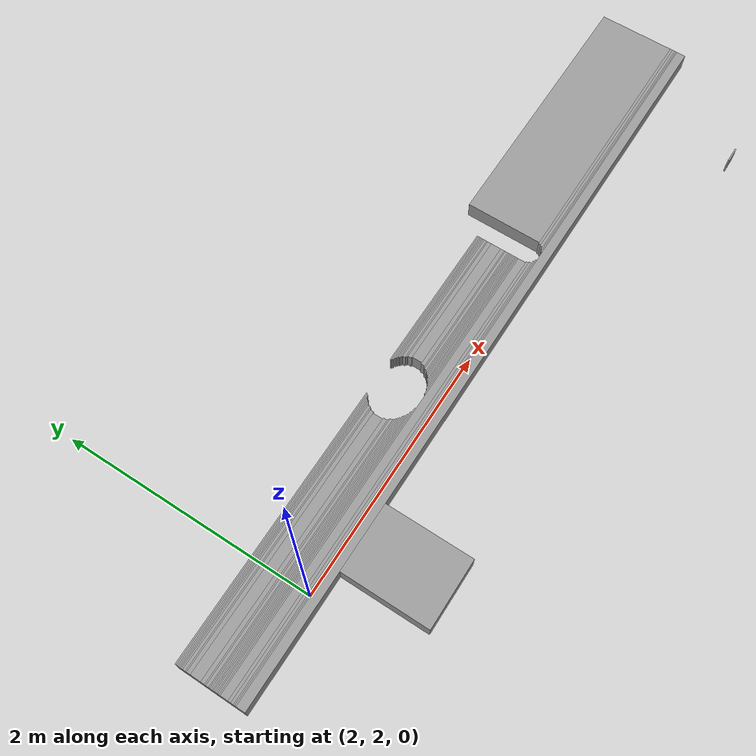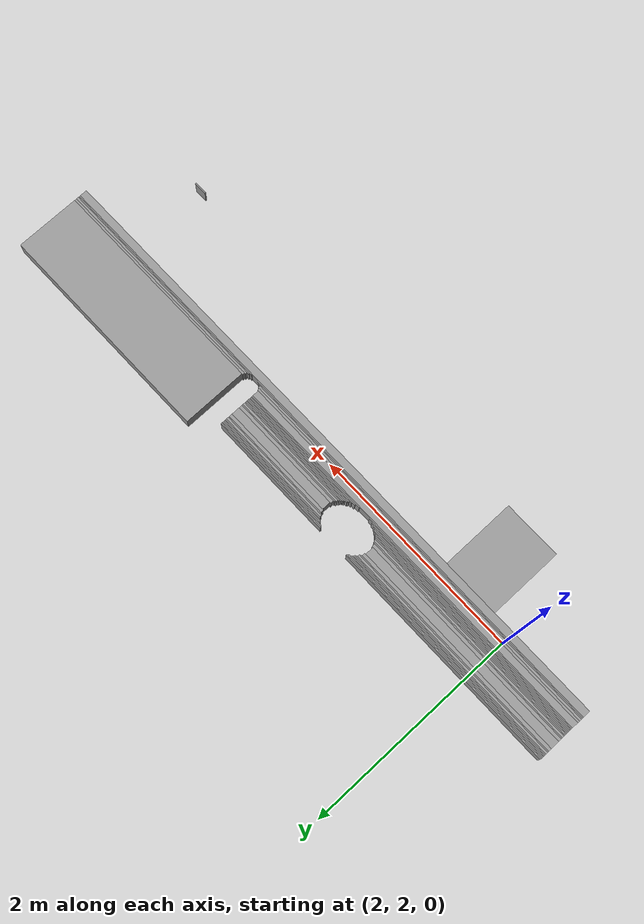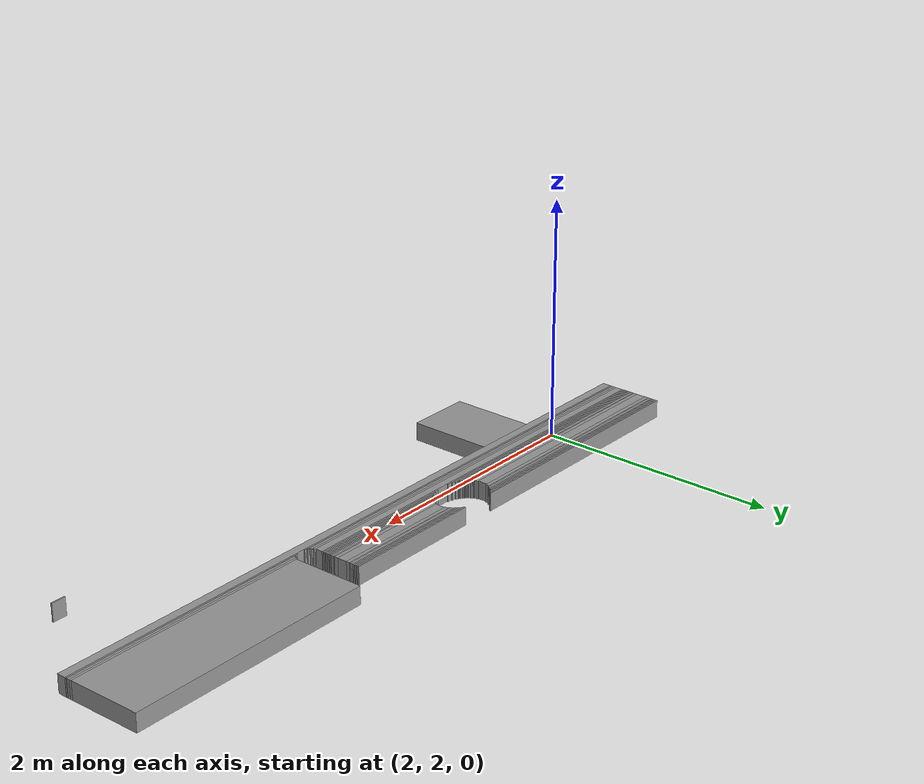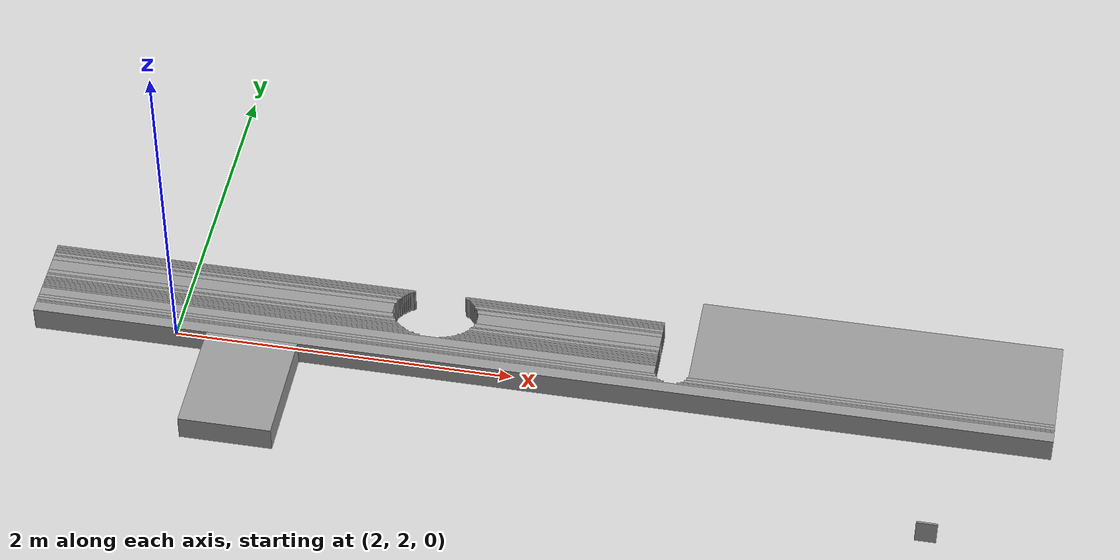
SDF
<sdf version="1.6">
 <model name="new_model">
  <static>1</static>
  <static>1</static>
  <static>1</static>
  <static>1</static>
  <static>1</static>
  <static>1</static>
  <static>1</static>
  <static>1</static>
  <static>1</static>
  <static>1</static>
  <static>1</static>
  <static>1</static>
  <static>1</static>
  <static>1</static>
  <static>1</static>
  <static>1</static>
  <static>1</static>
  <static>1</static>
  <static>1</static>
  <static>1</static>
  <static>1</static>
  <static>1</static>
  <static>1</static>
  <static>1</static>
  <static>1</static>
  <static>1</static>
  <static>1</static>
  <static>1</static>
  <static>1</static>
  <static>1</static>
  <static>1</static>
  <static>1</static>
  <static>1</static>
  <static>1</static>
  <static>1</static>
  <static>1</static>
  <static>1</static>
  <static>1</static>
  <static>1</static>
  <static>1</static>
  <static>1</static>
  <static>1</static>
  <static>1</static>
  <static>1</static>
  <static>1</static>
  <static>1</static>
  <static>1</static>
  <static>1</static>
  <static>1</static>
  <static>1</static>
  <static>1</static>
  <static>1</static>
  <static>1</static>
  <static>1</static>
  <static>1</static>
  <static>1</static>
  <static>1</static>
  <link name="wall58">
   <collision name="wall58_collision">
    <geometry><box><size>0.121250 0.011250 0.150000</size></box></geometry>
    <pose>6.485000 1.180000 0.075000 0 0 0</pose>
   </collision>
   <visual name="Wall_58_Visual">
    <pose>6.485000 1.180000 0.075000 0 0 0</pose>
    <geometry><box><size>0.121250 0.011250 0.150000</size></box></geometry>
    <material>
     <script><uri>file://media/materials/scripts/gazebo.material</uri><name>Gazebo/Grey</name></script>
     <ambient>1 1 1 1</ambient>
    </material>
    <meta><layer>0</layer></meta>
   </visual>
  </link>
  <static>1</static>
  <link name="wall59">
   <collision name="wall59_collision">
    <geometry><box><size>0.541250 0.691250 0.150000</size></box></geometry>
    <pose>2.485000 1.560000 0.075000 0 0 0</pose>
   </collision>
   <visual name="Wall_59_Visual">
    <pose>2.485000 1.560000 0.075000 0 0 0</pose>
    <geometry><box><size>0.541250 0.691250 0.150000</size></box></geometry>
    <material>
     <script><uri>file://media/materials/scripts/gazebo.material</uri><name>Gazebo/Grey</name></script>
     <ambient>1 1 1 1</ambient>
    </material>
    <meta><layer>0</layer></meta>
   </visual>
  </link>
  <static>1</static>
  <link name="wall60">
   <collision name="wall60_collision">
    <geometry><box><size>5.951250 0.071250 0.150000</size></box></geometry>
    <pose>4.150000 1.940000 0.075000 0 0 0</pose>
   </collision>
   <visual name="Wall_60_Visual">
    <pose>4.150000 1.940000 0.075000 0 0 0</pose>
    <geometry><box><size>5.951250 0.071250 0.150000</size></box></geometry>
    <material>
     <script><uri>file://media/materials/scripts/gazebo.material</uri><name>Gazebo/Grey</name></script>
     <ambient>1 1 1 1</ambient>
    </material>
    <meta><layer>0</layer></meta>
   </visual>
  </link>
  <static>1</static>
  <link name="wall61">
   <collision name="wall61_collision">
    <geometry><box><size>3.711250 0.011250 0.150000</size></box></geometry>
    <pose>3.030000 1.980000 0.075000 0 0 0</pose>
   </collision>
   <visual name="Wall_61_Visual">
    <pose>3.030000 1.980000 0.075000 0 0 0</pose>
    <geometry><box><size>3.711250 0.011250 0.150000</size></box></geometry>
    <material>
     <script><uri>file://media/materials/scripts/gazebo.material</uri><name>Gazebo/Grey</name></script>
     <ambient>1 1 1 1</ambient>
    </material>
    <meta><layer>0</layer></meta>
   </visual>
  </link>
  <static>1</static>
  <link name="wall62">
   <collision name="wall62_collision">
    <geometry><box><size>2.161250 0.011250 0.150000</size></box></geometry>
    <pose>6.045000 1.980000 0.075000 0 0 0</pose>
   </collision>
   <visual name="Wall_62_Visual">
    <pose>6.045000 1.980000 0.075000 0 0 0</pose>
    <geometry><box><size>2.161250 0.011250 0.150000</size></box></geometry>
    <material>
     <script><uri>file://media/materials/scripts/gazebo.material</uri><name>Gazebo/Grey</name></script>
     <ambient>1 1 1 1</ambient>
    </material>
    <meta><layer>0</layer></meta>
   </visual>
  </link>
  <static>1</static>
  <link name="wall63">
   <collision name="wall63_collision">
    <geometry><box><size>3.691250 0.011250 0.150000</size></box></geometry>
    <pose>3.020000 1.990000 0.075000 0 0 0</pose>
   </collision>
   <visual name="Wall_63_Visual">
    <pose>3.020000 1.990000 0.075000 0 0 0</pose>
    <geometry><box><size>3.691250 0.011250 0.150000</size></box></geometry>
    <material>
     <script><uri>file://media/materials/scripts/gazebo.material</uri><name>Gazebo/Grey</name></script>
     <ambient>1 1 1 1</ambient>
    </material>
    <meta><layer>0</layer></meta>
   </visual>
  </link>
  <static>1</static>
  <link name="wall64">
   <collision name="wall64_collision">
    <geometry><box><size>2.141250 0.011250 0.150000</size></box></geometry>
    <pose>6.055000 1.990000 0.075000 0 0 0</pose>
   </collision>
   <visual name="Wall_64_Visual">
    <pose>6.055000 1.990000 0.075000 0 0 0</pose>
    <geometry><box><size>2.141250 0.011250 0.150000</size></box></geometry>
    <material>
     <script><uri>file://media/materials/scripts/gazebo.material</uri><name>Gazebo/Grey</name></script>
     <ambient>1 1 1 1</ambient>
    </material>
    <meta><layer>0</layer></meta>
   </visual>
  </link>
  <static>1</static>
  <link name="wall65">
   <collision name="wall65_collision">
    <geometry><box><size>3.671250 0.021250 0.150000</size></box></geometry>
    <pose>3.010000 2.005000 0.075000 0 0 0</pose>
   </collision>
   <visual name="Wall_65_Visual">
    <pose>3.010000 2.005000 0.075000 0 0 0</pose>
    <geometry><box><size>3.671250 0.021250 0.150000</size></box></geometry>
    <material>
     <script><uri>file://media/materials/scripts/gazebo.material</uri><name>Gazebo/Grey</name></script>
     <ambient>1 1 1 1</ambient>
    </material>
    <meta><layer>0</layer></meta>
   </visual>
  </link>
  <static>1</static>
  <link name="wall66">
   <collision name="wall66_collision">
    <geometry><box><size>2.121250 0.021250 0.150000</size></box></geometry>
    <pose>6.065000 2.005000 0.075000 0 0 0</pose>
   </collision>
   <visual name="Wall_66_Visual">
    <pose>6.065000 2.005000 0.075000 0 0 0</pose>
    <geometry><box><size>2.121250 0.021250 0.150000</size></box></geometry>
    <material>
     <script><uri>file://media/materials/scripts/gazebo.material</uri><name>Gazebo/Grey</name></script>
     <ambient>1 1 1 1</ambient>
    </material>
    <meta><layer>0</layer></meta>
   </visual>
  </link>
  <static>1</static>
  <link name="wall67">
   <collision name="wall67_collision">
    <geometry><box><size>3.661250 0.021250 0.150000</size></box></geometry>
    <pose>3.005000 2.025000 0.075000 0 0 0</pose>
   </collision>
   <visual name="Wall_67_Visual">
    <pose>3.005000 2.025000 0.075000 0 0 0</pose>
    <geometry><box><size>3.661250 0.021250 0.150000</size></box></geometry>
    <material>
     <script><uri>file://media/materials/scripts/gazebo.material</uri><name>Gazebo/Grey</name></script>
     <ambient>1 1 1 1</ambient>
    </material>
    <meta><layer>0</layer></meta>
   </visual>
  </link>
  <static>1</static>
  <link name="wall68">
   <collision name="wall68_collision">
    <geometry><box><size>2.111250 0.021250 0.150000</size></box></geometry>
    <pose>6.070000 2.025000 0.075000 0 0 0</pose>
   </collision>
   <visual name="Wall_68_Visual">
    <pose>6.070000 2.025000 0.075000 0 0 0</pose>
    <geometry><box><size>2.111250 0.021250 0.150000</size></box></geometry>
    <material>
     <script><uri>file://media/materials/scripts/gazebo.material</uri><name>Gazebo/Grey</name></script>
     <ambient>1 1 1 1</ambient>
    </material>
    <meta><layer>0</layer></meta>
   </visual>
  </link>
  <static>1</static>
  <link name="wall69">
   <collision name="wall69_collision">
    <geometry><box><size>3.651250 0.061250 0.150000</size></box></geometry>
    <pose>3.000000 2.065000 0.075000 0 0 0</pose>
   </collision>
   <visual name="Wall_69_Visual">
    <pose>3.000000 2.065000 0.075000 0 0 0</pose>
    <geometry><box><size>3.651250 0.061250 0.150000</size></box></geometry>
    <material>
     <script><uri>file://media/materials/scripts/gazebo.material</uri><name>Gazebo/Grey</name></script>
     <ambient>1 1 1 1</ambient>
    </material>
    <meta><layer>0</layer></meta>
   </visual>
  </link>
  <static>1</static>
  <link name="wall70">
   <collision name="wall70_collision">
    <geometry><box><size>2.101250 0.601250 0.150000</size></box></geometry>
    <pose>6.075000 2.335000 0.075000 0 0 0</pose>
   </collision>
   <visual name="Wall_70_Visual">
    <pose>6.075000 2.335000 0.075000 0 0 0</pose>
    <geometry><box><size>2.101250 0.601250 0.150000</size></box></geometry>
    <material>
     <script><uri>file://media/materials/scripts/gazebo.material</uri><name>Gazebo/Grey</name></script>
     <ambient>1 1 1 1</ambient>
    </material>
    <meta><layer>0</layer></meta>
   </visual>
  </link>
  <static>1</static>
  <link name="wall71">
   <collision name="wall71_collision">
    <geometry><box><size>2.261250 0.011250 0.150000</size></box></geometry>
    <pose>2.305000 2.100000 0.075000 0 0 0</pose>
   </collision>
   <visual name="Wall_71_Visual">
    <pose>2.305000 2.100000 0.075000 0 0 0</pose>
    <geometry><box><size>2.261250 0.011250 0.150000</size></box></geometry>
    <material>
     <script><uri>file://media/materials/scripts/gazebo.material</uri><name>Gazebo/Grey</name></script>
     <ambient>1 1 1 1</ambient>
    </material>
    <meta><layer>0</layer></meta>
   </visual>
  </link>
  <static>1</static>
  <link name="wall72">
   <collision name="wall72_collision">
    <geometry><box><size>1.271250 0.011250 0.150000</size></box></geometry>
    <pose>4.190000 2.100000 0.075000 0 0 0</pose>
   </collision>
   <visual name="Wall_72_Visual">
    <pose>4.190000 2.100000 0.075000 0 0 0</pose>
    <geometry><box><size>1.271250 0.011250 0.150000</size></box></geometry>
    <material>
     <script><uri>file://media/materials/scripts/gazebo.material</uri><name>Gazebo/Grey</name></script>
     <ambient>1 1 1 1</ambient>
    </material>
    <meta><layer>0</layer></meta>
   </visual>
  </link>
  <static>1</static>
  <link name="wall73">
   <collision name="wall73_collision">
    <geometry><box><size>2.221250 0.011250 0.150000</size></box></geometry>
    <pose>2.285000 2.110000 0.075000 0 0 0</pose>
   </collision>
   <visual name="Wall_73_Visual">
    <pose>2.285000 2.110000 0.075000 0 0 0</pose>
    <geometry><box><size>2.221250 0.011250 0.150000</size></box></geometry>
    <material>
     <script><uri>file://media/materials/scripts/gazebo.material</uri><name>Gazebo/Grey</name></script>
     <ambient>1 1 1 1</ambient>
    </material>
    <meta><layer>0</layer></meta>
   </visual>
  </link>
  <static>1</static>
  <link name="wall74">
   <collision name="wall74_collision">
    <geometry><box><size>1.231250 0.011250 0.150000</size></box></geometry>
    <pose>4.210000 2.110000 0.075000 0 0 0</pose>
   </collision>
   <visual name="Wall_74_Visual">
    <pose>4.210000 2.110000 0.075000 0 0 0</pose>
    <geometry><box><size>1.231250 0.011250 0.150000</size></box></geometry>
    <material>
     <script><uri>file://media/materials/scripts/gazebo.material</uri><name>Gazebo/Grey</name></script>
     <ambient>1 1 1 1</ambient>
    </material>
    <meta><layer>0</layer></meta>
   </visual>
  </link>
  <static>1</static>
  <link name="wall75">
   <collision name="wall75_collision">
    <geometry><box><size>2.191250 0.011250 0.150000</size></box></geometry>
    <pose>2.270000 2.120000 0.075000 0 0 0</pose>
   </collision>
   <visual name="Wall_75_Visual">
    <pose>2.270000 2.120000 0.075000 0 0 0</pose>
    <geometry><box><size>2.191250 0.011250 0.150000</size></box></geometry>
    <material>
     <script><uri>file://media/materials/scripts/gazebo.material</uri><name>Gazebo/Grey</name></script>
     <ambient>1 1 1 1</ambient>
    </material>
    <meta><layer>0</layer></meta>
   </visual>
  </link>
  <static>1</static>
  <link name="wall76">
   <collision name="wall76_collision">
    <geometry><box><size>1.201250 0.011250 0.150000</size></box></geometry>
    <pose>4.225000 2.120000 0.075000 0 0 0</pose>
   </collision>
   <visual name="Wall_76_Visual">
    <pose>4.225000 2.120000 0.075000 0 0 0</pose>
    <geometry><box><size>1.201250 0.011250 0.150000</size></box></geometry>
    <material>
     <script><uri>file://media/materials/scripts/gazebo.material</uri><name>Gazebo/Grey</name></script>
     <ambient>1 1 1 1</ambient>
    </material>
    <meta><layer>0</layer></meta>
   </visual>
  </link>
  <static>1</static>
  <link name="wall77">
   <collision name="wall77_collision">
    <geometry><box><size>2.171250 0.011250 0.150000</size></box></geometry>
    <pose>2.260000 2.130000 0.075000 0 0 0</pose>
   </collision>
   <visual name="Wall_77_Visual">
    <pose>2.260000 2.130000 0.075000 0 0 0</pose>
    <geometry><box><size>2.171250 0.011250 0.150000</size></box></geometry>
    <material>
     <script><uri>file://media/materials/scripts/gazebo.material</uri><name>Gazebo/Grey</name></script>
     <ambient>1 1 1 1</ambient>
    </material>
    <meta><layer>0</layer></meta>
   </visual>
  </link>
  <static>1</static>
  <link name="wall78">
   <collision name="wall78_collision">
    <geometry><box><size>1.181250 0.011250 0.150000</size></box></geometry>
    <pose>4.235000 2.130000 0.075000 0 0 0</pose>
   </collision>
   <visual name="Wall_78_Visual">
    <pose>4.235000 2.130000 0.075000 0 0 0</pose>
    <geometry><box><size>1.181250 0.011250 0.150000</size></box></geometry>
    <material>
     <script><uri>file://media/materials/scripts/gazebo.material</uri><name>Gazebo/Grey</name></script>
     <ambient>1 1 1 1</ambient>
    </material>
    <meta><layer>0</layer></meta>
   </visual>
  </link>
  <static>1</static>
  <link name="wall79">
   <collision name="wall79_collision">
    <geometry><box><size>2.161250 0.011250 0.150000</size></box></geometry>
    <pose>2.255000 2.140000 0.075000 0 0 0</pose>
   </collision>
   <visual name="Wall_79_Visual">
    <pose>2.255000 2.140000 0.075000 0 0 0</pose>
    <geometry><box><size>2.161250 0.011250 0.150000</size></box></geometry>
    <material>
     <script><uri>file://media/materials/scripts/gazebo.material</uri><name>Gazebo/Grey</name></script>
     <ambient>1 1 1 1</ambient>
    </material>
    <meta><layer>0</layer></meta>
   </visual>
  </link>
  <static>1</static>
  <link name="wall80">
   <collision name="wall80_collision">
    <geometry><box><size>1.171250 0.011250 0.150000</size></box></geometry>
    <pose>4.240000 2.140000 0.075000 0 0 0</pose>
   </collision>
   <visual name="Wall_80_Visual">
    <pose>4.240000 2.140000 0.075000 0 0 0</pose>
    <geometry><box><size>1.171250 0.011250 0.150000</size></box></geometry>
    <material>
     <script><uri>file://media/materials/scripts/gazebo.material</uri><name>Gazebo/Grey</name></script>
     <ambient>1 1 1 1</ambient>
    </material>
    <meta><layer>0</layer></meta>
   </visual>
  </link>
  <static>1</static>
  <link name="wall81">
   <collision name="wall81_collision">
    <geometry><box><size>2.141250 0.011250 0.150000</size></box></geometry>
    <pose>2.245000 2.150000 0.075000 0 0 0</pose>
   </collision>
   <visual name="Wall_81_Visual">
    <pose>2.245000 2.150000 0.075000 0 0 0</pose>
    <geometry><box><size>2.141250 0.011250 0.150000</size></box></geometry>
    <material>
     <script><uri>file://media/materials/scripts/gazebo.material</uri><name>Gazebo/Grey</name></script>
     <ambient>1 1 1 1</ambient>
    </material>
    <meta><layer>0</layer></meta>
   </visual>
  </link>
  <static>1</static>
  <link name="wall82">
   <collision name="wall82_collision">
    <geometry><box><size>1.151250 0.011250 0.150000</size></box></geometry>
    <pose>4.250000 2.150000 0.075000 0 0 0</pose>
   </collision>
   <visual name="Wall_82_Visual">
    <pose>4.250000 2.150000 0.075000 0 0 0</pose>
    <geometry><box><size>1.151250 0.011250 0.150000</size></box></geometry>
    <material>
     <script><uri>file://media/materials/scripts/gazebo.material</uri><name>Gazebo/Grey</name></script>
     <ambient>1 1 1 1</ambient>
    </material>
    <meta><layer>0</layer></meta>
   </visual>
  </link>
  <static>1</static>
  <link name="wall83">
   <collision name="wall83_collision">
    <geometry><box><size>2.131250 0.011250 0.150000</size></box></geometry>
    <pose>2.240000 2.160000 0.075000 0 0 0</pose>
   </collision>
   <visual name="Wall_83_Visual">
    <pose>2.240000 2.160000 0.075000 0 0 0</pose>
    <geometry><box><size>2.131250 0.011250 0.150000</size></box></geometry>
    <material>
     <script><uri>file://media/materials/scripts/gazebo.material</uri><name>Gazebo/Grey</name></script>
     <ambient>1 1 1 1</ambient>
    </material>
    <meta><layer>0</layer></meta>
   </visual>
  </link>
  <static>1</static>
  <link name="wall84">
   <collision name="wall84_collision">
    <geometry><box><size>1.141250 0.011250 0.150000</size></box></geometry>
    <pose>4.255000 2.160000 0.075000 0 0 0</pose>
   </collision>
   <visual name="Wall_84_Visual">
    <pose>4.255000 2.160000 0.075000 0 0 0</pose>
    <geometry><box><size>1.141250 0.011250 0.150000</size></box></geometry>
    <material>
     <script><uri>file://media/materials/scripts/gazebo.material</uri><name>Gazebo/Grey</name></script>
     <ambient>1 1 1 1</ambient>
    </material>
    <meta><layer>0</layer></meta>
   </visual>
  </link>
  <static>1</static>
  <link name="wall85">
   <collision name="wall85_collision">
    <geometry><box><size>2.121250 0.011250 0.150000</size></box></geometry>
    <pose>2.235000 2.170000 0.075000 0 0 0</pose>
   </collision>
   <visual name="Wall_85_Visual">
    <pose>2.235000 2.170000 0.075000 0 0 0</pose>
    <geometry><box><size>2.121250 0.011250 0.150000</size></box></geometry>
    <material>
     <script><uri>file://media/materials/scripts/gazebo.material</uri><name>Gazebo/Grey</name></script>
     <ambient>1 1 1 1</ambient>
    </material>
    <meta><layer>0</layer></meta>
   </visual>
  </link>
  <static>1</static>
  <link name="wall86">
   <collision name="wall86_collision">
    <geometry><box><size>1.131250 0.011250 0.150000</size></box></geometry>
    <pose>4.260000 2.170000 0.075000 0 0 0</pose>
   </collision>
   <visual name="Wall_86_Visual">
    <pose>4.260000 2.170000 0.075000 0 0 0</pose>
    <geometry><box><size>1.131250 0.011250 0.150000</size></box></geometry>
    <material>
     <script><uri>file://media/materials/scripts/gazebo.material</uri><name>Gazebo/Grey</name></script>
     <ambient>1 1 1 1</ambient>
    </material>
    <meta><layer>0</layer></meta>
   </visual>
  </link>
  <static>1</static>
  <link name="wall87">
   <collision name="wall87_collision">
    <geometry><box><size>2.111250 0.011250 0.150000</size></box></geometry>
    <pose>2.230000 2.180000 0.075000 0 0 0</pose>
   </collision>
   <visual name="Wall_87_Visual">
    <pose>2.230000 2.180000 0.075000 0 0 0</pose>
    <geometry><box><size>2.111250 0.011250 0.150000</size></box></geometry>
    <material>
     <script><uri>file://media/materials/scripts/gazebo.material</uri><name>Gazebo/Grey</name></script>
     <ambient>1 1 1 1</ambient>
    </material>
    <meta><layer>0</layer></meta>
   </visual>
  </link>
  <static>1</static>
  <link name="wall88">
   <collision name="wall88_collision">
    <geometry><box><size>1.121250 0.011250 0.150000</size></box></geometry>
    <pose>4.265000 2.180000 0.075000 0 0 0</pose>
   </collision>
   <visual name="Wall_88_Visual">
    <pose>4.265000 2.180000 0.075000 0 0 0</pose>
    <geometry><box><size>1.121250 0.011250 0.150000</size></box></geometry>
    <material>
     <script><uri>file://media/materials/scripts/gazebo.material</uri><name>Gazebo/Grey</name></script>
     <ambient>1 1 1 1</ambient>
    </material>
    <meta><layer>0</layer></meta>
   </visual>
  </link>
  <static>1</static>
  <link name="wall89">
   <collision name="wall89_collision">
    <geometry><box><size>2.101250 0.021250 0.150000</size></box></geometry>
    <pose>2.225000 2.195000 0.075000 0 0 0</pose>
   </collision>
   <visual name="Wall_89_Visual">
    <pose>2.225000 2.195000 0.075000 0 0 0</pose>
    <geometry><box><size>2.101250 0.021250 0.150000</size></box></geometry>
    <material>
     <script><uri>file://media/materials/scripts/gazebo.material</uri><name>Gazebo/Grey</name></script>
     <ambient>1 1 1 1</ambient>
    </material>
    <meta><layer>0</layer></meta>
   </visual>
  </link>
  <static>1</static>
  <link name="wall90">
   <collision name="wall90_collision">
    <geometry><box><size>1.111250 0.021250 0.150000</size></box></geometry>
    <pose>4.270000 2.195000 0.075000 0 0 0</pose>
   </collision>
   <visual name="Wall_90_Visual">
    <pose>4.270000 2.195000 0.075000 0 0 0</pose>
    <geometry><box><size>1.111250 0.021250 0.150000</size></box></geometry>
    <material>
     <script><uri>file://media/materials/scripts/gazebo.material</uri><name>Gazebo/Grey</name></script>
     <ambient>1 1 1 1</ambient>
    </material>
    <meta><layer>0</layer></meta>
   </visual>
  </link>
  <static>1</static>
  <link name="wall91">
   <collision name="wall91_collision">
    <geometry><box><size>2.091250 0.011250 0.150000</size></box></geometry>
    <pose>2.220000 2.210000 0.075000 0 0 0</pose>
   </collision>
   <visual name="Wall_91_Visual">
    <pose>2.220000 2.210000 0.075000 0 0 0</pose>
    <geometry><box><size>2.091250 0.011250 0.150000</size></box></geometry>
    <material>
     <script><uri>file://media/materials/scripts/gazebo.material</uri><name>Gazebo/Grey</name></script>
     <ambient>1 1 1 1</ambient>
    </material>
    <meta><layer>0</layer></meta>
   </visual>
  </link>
  <static>1</static>
  <link name="wall92">
   <collision name="wall92_collision">
    <geometry><box><size>1.101250 0.011250 0.150000</size></box></geometry>
    <pose>4.275000 2.210000 0.075000 0 0 0</pose>
   </collision>
   <visual name="Wall_92_Visual">
    <pose>4.275000 2.210000 0.075000 0 0 0</pose>
    <geometry><box><size>1.101250 0.011250 0.150000</size></box></geometry>
    <material>
     <script><uri>file://media/materials/scripts/gazebo.material</uri><name>Gazebo/Grey</name></script>
     <ambient>1 1 1 1</ambient>
    </material>
    <meta><layer>0</layer></meta>
   </visual>
  </link>
  <static>1</static>
  <link name="wall93">
   <collision name="wall93_collision">
    <geometry><box><size>2.081250 0.031250 0.150000</size></box></geometry>
    <pose>2.215000 2.230000 0.075000 0 0 0</pose>
   </collision>
   <visual name="Wall_93_Visual">
    <pose>2.215000 2.230000 0.075000 0 0 0</pose>
    <geometry><box><size>2.081250 0.031250 0.150000</size></box></geometry>
    <material>
     <script><uri>file://media/materials/scripts/gazebo.material</uri><name>Gazebo/Grey</name></script>
     <ambient>1 1 1 1</ambient>
    </material>
    <meta><layer>0</layer></meta>
   </visual>
  </link>
  <static>1</static>
  <link name="wall94">
   <collision name="wall94_collision">
    <geometry><box><size>1.091250 0.031250 0.150000</size></box></geometry>
    <pose>4.280000 2.230000 0.075000 0 0 0</pose>
   </collision>
   <visual name="Wall_94_Visual">
    <pose>4.280000 2.230000 0.075000 0 0 0</pose>
    <geometry><box><size>1.091250 0.031250 0.150000</size></box></geometry>
    <material>
     <script><uri>file://media/materials/scripts/gazebo.material</uri><name>Gazebo/Grey</name></script>
     <ambient>1 1 1 1</ambient>
    </material>
    <meta><layer>0</layer></meta>
   </visual>
  </link>
  <static>1</static>
  <link name="wall95">
   <collision name="wall95_collision">
    <geometry><box><size>2.071250 0.081250 0.150000</size></box></geometry>
    <pose>2.210000 2.285000 0.075000 0 0 0</pose>
   </collision>
   <visual name="Wall_95_Visual">
    <pose>2.210000 2.285000 0.075000 0 0 0</pose>
    <geometry><box><size>2.071250 0.081250 0.150000</size></box></geometry>
    <material>
     <script><uri>file://media/materials/scripts/gazebo.material</uri><name>Gazebo/Grey</name></script>
     <ambient>1 1 1 1</ambient>
    </material>
    <meta><layer>0</layer></meta>
   </visual>
  </link>
  <static>1</static>
  <link name="wall96">
   <collision name="wall96_collision">
    <geometry><box><size>1.081250 0.081250 0.150000</size></box></geometry>
    <pose>4.285000 2.285000 0.075000 0 0 0</pose>
   </collision>
   <visual name="Wall_96_Visual">
    <pose>4.285000 2.285000 0.075000 0 0 0</pose>
    <geometry><box><size>1.081250 0.081250 0.150000</size></box></geometry>
    <material>
     <script><uri>file://media/materials/scripts/gazebo.material</uri><name>Gazebo/Grey</name></script>
     <ambient>1 1 1 1</ambient>
    </material>
    <meta><layer>0</layer></meta>
   </visual>
  </link>
  <static>1</static>
  <link name="wall97">
   <collision name="wall97_collision">
    <geometry><box><size>2.081250 0.031250 0.150000</size></box></geometry>
    <pose>2.215000 2.340000 0.075000 0 0 0</pose>
   </collision>
   <visual name="Wall_97_Visual">
    <pose>2.215000 2.340000 0.075000 0 0 0</pose>
    <geometry><box><size>2.081250 0.031250 0.150000</size></box></geometry>
    <material>
     <script><uri>file://media/materials/scripts/gazebo.material</uri><name>Gazebo/Grey</name></script>
     <ambient>1 1 1 1</ambient>
    </material>
    <meta><layer>0</layer></meta>
   </visual>
  </link>
  <static>1</static>
  <link name="wall98">
   <collision name="wall98_collision">
    <geometry><box><size>1.091250 0.031250 0.150000</size></box></geometry>
    <pose>4.280000 2.340000 0.075000 0 0 0</pose>
   </collision>
   <visual name="Wall_98_Visual">
    <pose>4.280000 2.340000 0.075000 0 0 0</pose>
    <geometry><box><size>1.091250 0.031250 0.150000</size></box></geometry>
    <material>
     <script><uri>file://media/materials/scripts/gazebo.material</uri><name>Gazebo/Grey</name></script>
     <ambient>1 1 1 1</ambient>
    </material>
    <meta><layer>0</layer></meta>
   </visual>
  </link>
  <static>1</static>
  <link name="wall99">
   <collision name="wall99_collision">
    <geometry><box><size>2.091250 0.011250 0.150000</size></box></geometry>
    <pose>2.220000 2.360000 0.075000 0 0 0</pose>
   </collision>
   <visual name="Wall_99_Visual">
    <pose>2.220000 2.360000 0.075000 0 0 0</pose>
    <geometry><box><size>2.091250 0.011250 0.150000</size></box></geometry>
    <material>
     <script><uri>file://media/materials/scripts/gazebo.material</uri><name>Gazebo/Grey</name></script>
     <ambient>1 1 1 1</ambient>
    </material>
    <meta><layer>0</layer></meta>
   </visual>
  </link>
  <static>1</static>
  <link name="wall100">
   <collision name="wall100_collision">
    <geometry><box><size>1.101250 0.011250 0.150000</size></box></geometry>
    <pose>4.275000 2.360000 0.075000 0 0 0</pose>
   </collision>
   <visual name="Wall_100_Visual">
    <pose>4.275000 2.360000 0.075000 0 0 0</pose>
    <geometry><box><size>1.101250 0.011250 0.150000</size></box></geometry>
    <material>
     <script><uri>file://media/materials/scripts/gazebo.material</uri><name>Gazebo/Grey</name></script>
     <ambient>1 1 1 1</ambient>
    </material>
    <meta><layer>0</layer></meta>
   </visual>
  </link>
  <static>1</static>
  <link name="wall101">
   <collision name="wall101_collision">
    <geometry><box><size>2.101250 0.021250 0.150000</size></box></geometry>
    <pose>2.225000 2.375000 0.075000 0 0 0</pose>
   </collision>
   <visual name="Wall_101_Visual">
    <pose>2.225000 2.375000 0.075000 0 0 0</pose>
    <geometry><box><size>2.101250 0.021250 0.150000</size></box></geometry>
    <material>
     <script><uri>file://media/materials/scripts/gazebo.material</uri><name>Gazebo/Grey</name></script>
     <ambient>1 1 1 1</ambient>
    </material>
    <meta><layer>0</layer></meta>
   </visual>
  </link>
  <static>1</static>
  <link name="wall102">
   <collision name="wall102_collision">
    <geometry><box><size>1.111250 0.021250 0.150000</size></box></geometry>
    <pose>4.270000 2.375000 0.075000 0 0 0</pose>
   </collision>
   <visual name="Wall_102_Visual">
    <pose>4.270000 2.375000 0.075000 0 0 0</pose>
    <geometry><box><size>1.111250 0.021250 0.150000</size></box></geometry>
    <material>
     <script><uri>file://media/materials/scripts/gazebo.material</uri><name>Gazebo/Grey</name></script>
     <ambient>1 1 1 1</ambient>
    </material>
    <meta><layer>0</layer></meta>
   </visual>
  </link>
  <static>1</static>
  <link name="wall103">
   <collision name="wall103_collision">
    <geometry><box><size>2.111250 0.011250 0.150000</size></box></geometry>
    <pose>2.230000 2.390000 0.075000 0 0 0</pose>
   </collision>
   <visual name="Wall_103_Visual">
    <pose>2.230000 2.390000 0.075000 0 0 0</pose>
    <geometry><box><size>2.111250 0.011250 0.150000</size></box></geometry>
    <material>
     <script><uri>file://media/materials/scripts/gazebo.material</uri><name>Gazebo/Grey</name></script>
     <ambient>1 1 1 1</ambient>
    </material>
    <meta><layer>0</layer></meta>
   </visual>
  </link>
  <static>1</static>
  <link name="wall104">
   <collision name="wall104_collision">
    <geometry><box><size>1.121250 0.011250 0.150000</size></box></geometry>
    <pose>4.265000 2.390000 0.075000 0 0 0</pose>
   </collision>
   <visual name="Wall_104_Visual">
    <pose>4.265000 2.390000 0.075000 0 0 0</pose>
    <geometry><box><size>1.121250 0.011250 0.150000</size></box></geometry>
    <material>
     <script><uri>file://media/materials/scripts/gazebo.material</uri><name>Gazebo/Grey</name></script>
     <ambient>1 1 1 1</ambient>
    </material>
    <meta><layer>0</layer></meta>
   </visual>
  </link>
  <static>1</static>
  <link name="wall105">
   <collision name="wall105_collision">
    <geometry><box><size>2.121250 0.011250 0.150000</size></box></geometry>
    <pose>2.235000 2.400000 0.075000 0 0 0</pose>
   </collision>
   <visual name="Wall_105_Visual">
    <pose>2.235000 2.400000 0.075000 0 0 0</pose>
    <geometry><box><size>2.121250 0.011250 0.150000</size></box></geometry>
    <material>
     <script><uri>file://media/materials/scripts/gazebo.material</uri><name>Gazebo/Grey</name></script>
     <ambient>1 1 1 1</ambient>
    </material>
    <meta><layer>0</layer></meta>
   </visual>
  </link>
  <static>1</static>
  <link name="wall106">
   <collision name="wall106_collision">
    <geometry><box><size>1.131250 0.011250 0.150000</size></box></geometry>
    <pose>4.260000 2.400000 0.075000 0 0 0</pose>
   </collision>
   <visual name="Wall_106_Visual">
    <pose>4.260000 2.400000 0.075000 0 0 0</pose>
    <geometry><box><size>1.131250 0.011250 0.150000</size></box></geometry>
    <material>
     <script><uri>file://media/materials/scripts/gazebo.material</uri><name>Gazebo/Grey</name></script>
     <ambient>1 1 1 1</ambient>
    </material>
    <meta><layer>0</layer></meta>
   </visual>
  </link>
  <static>1</static>
  <link name="wall107">
   <collision name="wall107_collision">
    <geometry><box><size>2.131250 0.011250 0.150000</size></box></geometry>
    <pose>2.240000 2.410000 0.075000 0 0 0</pose>
   </collision>
   <visual name="Wall_107_Visual">
    <pose>2.240000 2.410000 0.075000 0 0 0</pose>
    <geometry><box><size>2.131250 0.011250 0.150000</size></box></geometry>
    <material>
     <script><uri>file://media/materials/scripts/gazebo.material</uri><name>Gazebo/Grey</name></script>
     <ambient>1 1 1 1</ambient>
    </material>
    <meta><layer>0</layer></meta>
   </visual>
  </link>
  <static>1</static>
  <link name="wall108">
   <collision name="wall108_collision">
    <geometry><box><size>1.141250 0.011250 0.150000</size></box></geometry>
    <pose>4.255000 2.410000 0.075000 0 0 0</pose>
   </collision>
   <visual name="Wall_108_Visual">
    <pose>4.255000 2.410000 0.075000 0 0 0</pose>
    <geometry><box><size>1.141250 0.011250 0.150000</size></box></geometry>
    <material>
     <script><uri>file://media/materials/scripts/gazebo.material</uri><name>Gazebo/Grey</name></script>
     <ambient>1 1 1 1</ambient>
    </material>
    <meta><layer>0</layer></meta>
   </visual>
  </link>
  <static>1</static>
  <link name="wall109">
   <collision name="wall109_collision">
    <geometry><box><size>2.141250 0.011250 0.150000</size></box></geometry>
    <pose>2.245000 2.420000 0.075000 0 0 0</pose>
   </collision>
   <visual name="Wall_109_Visual">
    <pose>2.245000 2.420000 0.075000 0 0 0</pose>
    <geometry><box><size>2.141250 0.011250 0.150000</size></box></geometry>
    <material>
     <script><uri>file://media/materials/scripts/gazebo.material</uri><name>Gazebo/Grey</name></script>
     <ambient>1 1 1 1</ambient>
    </material>
    <meta><layer>0</layer></meta>
   </visual>
  </link>
  <static>1</static>
  <link name="wall110">
   <collision name="wall110_collision">
    <geometry><box><size>1.151250 0.011250 0.150000</size></box></geometry>
    <pose>4.250000 2.420000 0.075000 0 0 0</pose>
   </collision>
   <visual name="Wall_110_Visual">
    <pose>4.250000 2.420000 0.075000 0 0 0</pose>
    <geometry><box><size>1.151250 0.011250 0.150000</size></box></geometry>
    <material>
     <script><uri>file://media/materials/scripts/gazebo.material</uri><name>Gazebo/Grey</name></script>
     <ambient>1 1 1 1</ambient>
    </material>
    <meta><layer>0</layer></meta>
   </visual>
  </link>
  <static>1</static>
  <link name="wall111">
   <collision name="wall111_collision">
    <geometry><box><size>2.161250 0.011250 0.150000</size></box></geometry>
    <pose>2.255000 2.430000 0.075000 0 0 0</pose>
   </collision>
   <visual name="Wall_111_Visual">
    <pose>2.255000 2.430000 0.075000 0 0 0</pose>
    <geometry><box><size>2.161250 0.011250 0.150000</size></box></geometry>
    <material>
     <script><uri>file://media/materials/scripts/gazebo.material</uri><name>Gazebo/Grey</name></script>
     <ambient>1 1 1 1</ambient>
    </material>
    <meta><layer>0</layer></meta>
   </visual>
  </link>
  <static>1</static>
  <link name="wall112">
   <collision name="wall112_collision">
    <geometry><box><size>1.171250 0.011250 0.150000</size></box></geometry>
    <pose>4.240000 2.430000 0.075000 0 0 0</pose>
   </collision>
   <visual name="Wall_112_Visual">
    <pose>4.240000 2.430000 0.075000 0 0 0</pose>
    <geometry><box><size>1.171250 0.011250 0.150000</size></box></geometry>
    <material>
     <script><uri>file://media/materials/scripts/gazebo.material</uri><name>Gazebo/Grey</name></script>
     <ambient>1 1 1 1</ambient>
    </material>
    <meta><layer>0</layer></meta>
   </visual>
  </link>
  <static>1</static>
  <link name="wall113">
   <collision name="wall113_collision">
    <geometry><box><size>2.171250 0.011250 0.150000</size></box></geometry>
    <pose>2.260000 2.440000 0.075000 0 0 0</pose>
   </collision>
   <visual name="Wall_113_Visual">
    <pose>2.260000 2.440000 0.075000 0 0 0</pose>
    <geometry><box><size>2.171250 0.011250 0.150000</size></box></geometry>
    <material>
     <script><uri>file://media/materials/scripts/gazebo.material</uri><name>Gazebo/Grey</name></script>
     <ambient>1 1 1 1</ambient>
    </material>
    <meta><layer>0</layer></meta>
   </visual>
  </link>
  <static>1</static>
  <link name="wall114">
   <collision name="wall114_collision">
    <geometry><box><size>1.181250 0.011250 0.150000</size></box></geometry>
    <pose>4.235000 2.440000 0.075000 0 0 0</pose>
   </collision>
   <visual name="Wall_114_Visual">
    <pose>4.235000 2.440000 0.075000 0 0 0</pose>
    <geometry><box><size>1.181250 0.011250 0.150000</size></box></geometry>
    <material>
     <script><uri>file://media/materials/scripts/gazebo.material</uri><name>Gazebo/Grey</name></script>
     <ambient>1 1 1 1</ambient>
    </material>
    <meta><layer>0</layer></meta>
   </visual>
  </link>
  <static>1</static>
  <static>1</static>
  <static>1</static>
  <static>1</static>
  <static>1</static>
  <static>1</static>
  <static>1</static>
  <static>1</static>
  <static>1</static>
  <static>1</static>
  <static>1</static>
  <static>1</static>
  <static>1</static>
  <static>1</static>
  <static>1</static>
  <static>1</static>
  <static>1</static>
  <static>1</static>
  <static>1</static>
  <static>1</static>
  <static>1</static>
  <static>1</static>
  <static>1</static>
  <static>1</static>
  <static>1</static>
  <static>1</static>
  <static>1</static>
  <static>1</static>
  <static>1</static>
  <static>1</static>
  <static>1</static>
  <static>1</static>
  <static>1</static>
  <static>1</static>
  <static>1</static>
  <static>1</static>
  <static>1</static>
  <static>1</static>
  <static>1</static>
  <static>1</static>
  <static>1</static>
  <static>1</static>
  <static>1</static>
  <static>1</static>
  <static>1</static>
  <static>1</static>
  <static>1</static>
  <static>1</static>
  <static>1</static>
  <static>1</static>
  <static>1</static>
  <static>1</static>
  <static>1</static>
  <static>1</static>
  <static>1</static>
  <static>1</static>
  <static>1</static>
  <static>1</static>
 </model>
</sdf>
